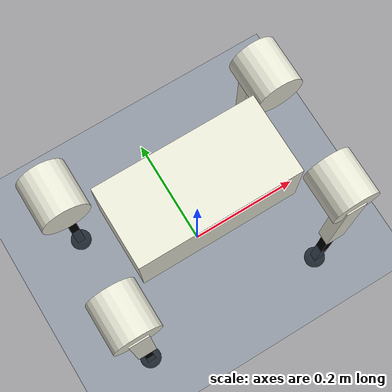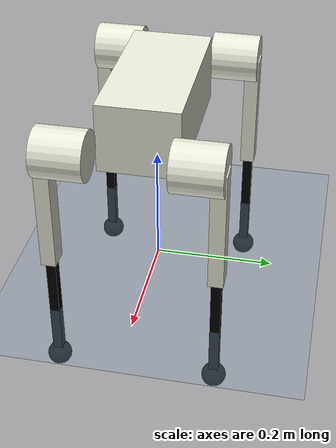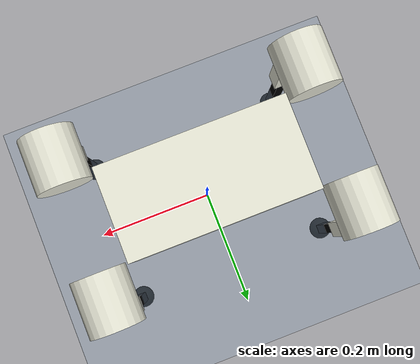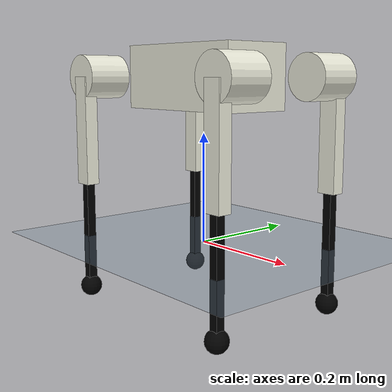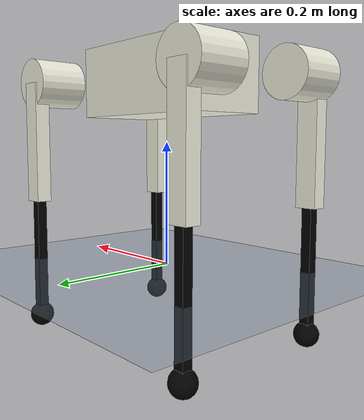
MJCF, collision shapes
<mujoco model="a1_description">
    <compiler angle="radian" meshdir="../meshes/" />
    <size njmax="500" nconmax="100" />
    <option gravity='0 0 -9.81' iterations='50' solver='Newton' timestep='0.002'/>

    <default>
        <geom contype="1" conaffinity="1" friction="0.6 0.3 0.3" rgba="0.5 0.6 0.7 1" margin="0.001" group="0"/>

        <light castshadow="false" diffuse="1 1 1"/>
        <motor ctrlrange="-33.5 33.5" ctrllimited="true"/>
        <camera fovy="60"/>
        <joint damping="0.01" armature="0.01" frictionloss="0.2" />

    </default>

    <asset>
        <mesh name="trunk" file="trunk.stl" />
        <mesh name="hip" file="hip.stl" />
        <mesh name="thigh_mirror" file="thigh_mirror.stl" />
        <mesh name="calf" file="calf.stl" />
        <mesh name="thigh" file="thigh.stl" />
    </asset>

    <asset>
        <texture name="plane" type="2d" builtin="flat" rgb1="1 1 1" rgb2="1 1 1" width="512" height="512" mark="cross" markrgb="0 0 0"/>
        <material name="plane" reflectance="0.0" texture="plane" texrepeat="3 3" texuniform="true"/>
        <texture name="grid" type="2d" builtin="checker" width="512" height="512" rgb1=".1 .2 .3" rgb2=".2 .3 .4"/>
        <material name="grid" texture="grid" texrepeat="2 2" texuniform="false" reflectance=".2"/>
    </asset>

    <visual>
        <headlight diffuse="0.6 0.6 0.6" ambient="0.3 0.3 0.3" specular="0 0 0"/>
        <rgba com="0.502 1.0 0 0.5" contactforce="0.98 0.4 0.4 0.7" contactpoint="1.0 1.0 0.6 0.4"/>
        <scale com="0.2" forcewidth="0.035" contactwidth="0.10" contactheight="0.04"/>
    </visual>

    <worldbody>
        <light pos="0 0 1.5" dir="0 0 -1" directional="true"/>
        <camera name="track" mode="trackcom" pos="0 -1.3 1.6" xyaxes="1 0 0 0 0.707 0.707"/>
        <geom name="floor" type="plane" size="0 0 1" material="grid"/>

        <body name="trunk" pos="0 0 0.3">
            <inertial pos="0.0127283 0.00218554 0.000514891" quat="0.00186575 0.711506 0.000389649 0.702677" mass="4.714" diaginertia="0.0648213 0.0565803 0.0169323" />
            <joint type="free" />
            <geom type="mesh" contype="0" conaffinity="0" group="1" rgba="0.913725 0.913725 0.847059 1" mesh="trunk" />
            <geom size="0.1335 0.066 0.057" type="box" rgba="0.913725 0.913725 0.847059 0" />
            <geom size="0.0005 0.0005 0.0005" type="box" contype="0" conaffinity="0" group="1" rgba="0.8 0 0 0" />
            <geom size="0.0005 0.0005 0.0005" type="box" rgba="0.8 0 0 0" />
            <site name="imu" pos="0 0 0"/>

            <body name="FR_hip" pos="0.183 -0.047 0">
                <inertial pos="-0.003311 -0.000635 3.1e-05" quat="0.507528 0.506268 0.491507 0.494499" mass="0.696" diaginertia="0.000807752 0.00055293 0.000468983" />
                <joint name="FR_hip_joint" pos="0 0 0" axis="1 0 0" limited="true" range="-0.802851 0.802851" />
                <geom quat="0 1 0 0" type="mesh" contype="0" conaffinity="0" group="1" rgba="0.913725 0.913725 0.847059 1" mesh="hip" />
                <geom size="0.04 0.04" pos="0 -0.055 0" quat="0.707107 0.707107 0 0" type="cylinder" rgba="0.913725 0.913725 0.847059 0" />
                <body name="FR_thigh" pos="0 -0.08505 0">
                    <inertial pos="-0.003237 0.022327 -0.027326" quat="0.999125 -0.00256393 -0.0409531 -0.00806091" mass="1.013" diaginertia="0.00555739 0.00513936 0.00133944" />
                    <joint name="FR_thigh_joint" pos="0 0 0" axis="0 1 0" limited="true" range="-1.0472 4.18879" />
                    <geom type="mesh" contype="0" conaffinity="0" group="1" rgba="0.913725 0.913725 0.847059 1" mesh="thigh_mirror" />
                    <geom size="0.1 0.01225 0.017" pos="0 0 -0.1" quat="0.707107 0 0.707107 0" type="box" rgba="0.913725 0.913725 0.847059 0" />
                    <body name="FR_calf" pos="0 0 -0.2">
                        <inertial pos="0.00472659 0 -0.131975" quat="0.706886 0.017653 0.017653 0.706886" mass="0.226" diaginertia="0.00340344 0.00339393 3.54834e-05" />
                        <joint name="FR_calf_joint" pos="0 0 0" axis="0 1 0" limited="true" range="-2.69653 -0.916298" />
                        <geom type="mesh" contype="0" conaffinity="0" group="1" rgba="0 0 0 1" mesh="calf" />
                        <geom size="0.1 0.008 0.008" pos="0 0 -0.1" quat="0.707107 0 0.707107 0" type="box" rgba="0 0 0 0" />
                        <geom name="FR_foot" size="0.02" pos="0 0 -0.2" rgba="0 0 0 1" friction="0.7 0.02 0.01"/>
                        <site name="FR_foot_site" pos="0 0 -0.2" type="sphere" size="0.02"/>
                    </body>
                </body>
            </body>
            <body name="FL_hip" pos="0.183 0.047 0">
                <inertial pos="-0.003311 0.000635 3.1e-05" quat="0.494499 0.491507 0.506268 0.507528" mass="0.696" diaginertia="0.000807752 0.00055293 0.000468983" />
                <joint name="FL_hip_joint" pos="0 0 0" axis="1 0 0" limited="true" range="-0.802851 0.802851" />
                <geom type="mesh" contype="0" conaffinity="0" group="1" rgba="0.913725 0.913725 0.847059 1" mesh="hip" />
                <geom size="0.04 0.04" pos="0 0.055 0" quat="0.707107 0.707107 0 0" type="cylinder" rgba="0.913725 0.913725 0.847059 0" />
                <body name="FL_thigh" pos="0 0.08505 0">
                    <inertial pos="-0.003237 -0.022327 -0.027326" quat="0.999125 0.00256393 -0.0409531 0.00806091" mass="1.013" diaginertia="0.00555739 0.00513936 0.00133944" />
                    <joint name="FL_thigh_joint" pos="0 0 0" axis="0 1 0" limited="true" range="-1.0472 4.18879" />
                    <geom type="mesh" contype="0" conaffinity="0" group="1" rgba="0.913725 0.913725 0.847059 1" mesh="thigh" />
                    <geom size="0.1 0.01225 0.017" pos="0 0 -0.1" quat="0.707107 0 0.707107 0" type="box" rgba="0.913725 0.913725 0.847059 0" />
                    <body name="FL_calf" pos="0 0 -0.2">
                        <inertial pos="0.00472659 0 -0.131975" quat="0.706886 0.017653 0.017653 0.706886" mass="0.226" diaginertia="0.00340344 0.00339393 3.54834e-05" />
                        <joint name="FL_calf_joint" pos="0 0 0" axis="0 1 0" limited="true" range="-2.69653 -0.916298" />
                        <geom type="mesh" contype="0" conaffinity="0" group="1" rgba="0 0 0 1" mesh="calf" />
                        <geom size="0.1 0.008 0.008" pos="0 0 -0.1" quat="0.707107 0 0.707107 0" type="box" rgba="0 0 0 0" />
                        <geom name="FL_foot" size="0.02" pos="0 0 -0.2" rgba="0 0 0 1" friction="0.7 0.02 0.01"/>
                        <site name="FL_foot_site" pos="0 0 -0.2" type="sphere" size="0.02"/>
                    </body>
                </body>
            </body>
            <body name="RR_hip" pos="-0.183 -0.047 0">
                <inertial pos="0.003311 -0.000635 3.1e-05" quat="0.491507 0.494499 0.507528 0.506268" mass="0.696" diaginertia="0.000807752 0.00055293 0.000468983" />
                <joint name="RR_hip_joint" pos="0 0 0" axis="1 0 0" limited="true" range="-0.802851 0.802851" />
                <geom quat="0 0 0 -1" type="mesh" contype="0" conaffinity="0" group="1" rgba="0.913725 0.913725 0.847059 1" mesh="hip" />
                <geom size="0.04 0.04" pos="0 -0.055 0" quat="0.707107 0.707107 0 0" type="cylinder" rgba="0.913725 0.913725 0.847059 0" />
                <body name="RR_thigh" pos="0 -0.08505 0">
                    <inertial pos="-0.003237 0.022327 -0.027326" quat="0.999125 -0.00256393 -0.0409531 -0.00806091" mass="1.013" diaginertia="0.00555739 0.00513936 0.00133944" />
                    <joint name="RR_thigh_joint" pos="0 0 0" axis="0 1 0" limited="true" range="-1.0472 4.18879" />
                    <geom type="mesh" contype="0" conaffinity="0" group="1" rgba="0.913725 0.913725 0.847059 1" mesh="thigh_mirror" />
                    <geom size="0.1 0.01225 0.017" pos="0 0 -0.1" quat="0.707107 0 0.707107 0" type="box" rgba="0.913725 0.913725 0.847059 0" />
                    <body name="RR_calf" pos="0 0 -0.2">
                        <inertial pos="0.00472659 0 -0.131975" quat="0.706886 0.017653 0.017653 0.706886" mass="0.226" diaginertia="0.00340344 0.00339393 3.54834e-05" />
                        <joint name="RR_calf_joint" pos="0 0 0" axis="0 1 0" limited="true" range="-2.69653 -0.916298" />
                        <geom type="mesh" contype="0" conaffinity="0" group="1" rgba="0 0 0 1" mesh="calf" />
                        <geom size="0.1 0.008 0.008" pos="0 0 -0.1" quat="0.707107 0 0.707107 0" type="box" rgba="0 0 0 0" />
                        <geom name="RR_foot" size="0.02" pos="0 0 -0.2" rgba="0 0 0 1" friction="0.7 0.02 0.01"/>
                        <site name="RR_foot_site" pos="0 0 -0.2" type="sphere" size="0.02"/>
                    </body>
                </body>
            </body>
            <body name="RL_hip" pos="-0.183 0.047 0">
                <inertial pos="0.003311 0.000635 3.1e-05" quat="0.506268 0.507528 0.494499 0.491507" mass="0.696" diaginertia="0.000807752 0.00055293 0.000468983" />
                <joint name="RL_hip_joint" pos="0 0 0" axis="1 0 0" limited="true" range="-0.802851 0.802851" />
                <geom quat="0 0 1 0" type="mesh" contype="0" conaffinity="0" group="1" rgba="0.913725 0.913725 0.847059 1" mesh="hip" />
                <geom size="0.04 0.04" pos="0 0.055 0" quat="0.707107 0.707107 0 0" type="cylinder" rgba="0.913725 0.913725 0.847059 0" />
                <body name="RL_thigh" pos="0 0.08505 0">
                    <inertial pos="-0.003237 -0.022327 -0.027326" quat="0.999125 0.00256393 -0.0409531 0.00806091" mass="1.013" diaginertia="0.00555739 0.00513936 0.00133944" />
                    <joint name="RL_thigh_joint" pos="0 0 0" axis="0 1 0" limited="true" range="-1.0472 4.18879" />
                    <geom type="mesh" contype="0" conaffinity="0" group="1" rgba="0.913725 0.913725 0.847059 1" mesh="thigh" />
                    <geom size="0.1 0.01225 0.017" pos="0 0 -0.1" quat="0.707107 0 0.707107 0" type="box" rgba="0.913725 0.913725 0.847059 0" />
                    <body name="RL_calf" pos="0 0 -0.2">
                        <inertial pos="0.00472659 0 -0.131975" quat="0.706886 0.017653 0.017653 0.706886" mass="0.226" diaginertia="0.00340344 0.00339393 3.54834e-05" />
                        <joint name="RL_calf_joint" pos="0 0 0" axis="0 1 0" limited="true" range="-2.69653 -0.916298" />
                        <geom type="mesh" contype="0" conaffinity="0" group="1" rgba="0 0 0 1" mesh="calf" />
                        <geom size="0.1 0.008 0.008" pos="0 0 -0.1" quat="0.707107 0 0.707107 0" type="box" rgba="0 0 0 0" />
                        <geom name="RL_foot" size="0.02" pos="0 0 -0.2" rgba="0 0 0 1" friction="0.7 0.02 0.01"/>
                        <site name="RL_foot_site" pos="0 0 -0.2" type="sphere" size="0.02"/>
                    </body>
                </body>
            </body>
        </body>
    </worldbody>
    <actuator>

        <motor name="FR_hip"       gear="1" joint="FR_hip_joint"/>
        <motor name="FR_thigh"       gear="1" joint="FR_thigh_joint"/>
        <motor name="FR_calf"       gear="1" joint="FR_calf_joint"/>
        <motor name="FL_hip"     gear="1" joint="FL_hip_joint"/>
        <motor name="FL_thigh"     gear="1" joint="FL_thigh_joint"/>
        <motor name="FL_calf"     gear="1" joint="FL_calf_joint"/>
        <motor name="RR_hip"      gear="1" joint="RR_hip_joint"/>
        <motor name="RR_thigh"   gear="1" joint="RR_thigh_joint"/>
        <motor name="RR_calf"   gear="1" joint="RR_calf_joint" />
        <motor name="RL_hip"      gear="1" joint="RL_hip_joint"/>
        <motor name="RL_thigh"      gear="1" joint="RL_thigh_joint"/>
        <motor name="RL_calf"      gear="1" joint="RL_calf_joint"/>
    </actuator>

    <sensor>

        <jointpos name="FR_hip_pos"     joint="FR_hip_joint"/>
        <jointpos name="FR_thigh_pos"   joint="FR_thigh_joint"/>
        <jointpos name="FR_calf_pos"    joint="FR_calf_joint"/>
        <jointpos name="FL_hip_pos"     joint="FL_hip_joint"/>
        <jointpos name="FL_thigh_pos"   joint="FL_thigh_joint"/>
        <jointpos name="FL_calf_pos"    joint="FL_calf_joint"/>
        <jointpos name="RR_hip_pos"     joint="RR_hip_joint"/>
        <jointpos name="RR_thigh_pos"   joint="RR_thigh_joint"/>
        <jointpos name="RR_calf_pos"    joint="RR_calf_joint" />
        <jointpos name="RL_hip_pos"     joint="RL_hip_joint"/>
        <jointpos name="RL_thigh_pos"   joint="RL_thigh_joint"/>
        <jointpos name="RL_calf_pos"    joint="RL_calf_joint"/>

        <jointvel name="FR_hip_vel"     joint="FR_hip_joint"/>
        <jointvel name="FR_thigh_vel"   joint="FR_thigh_joint"/>
        <jointvel name="FR_calf_vel"    joint="FR_calf_joint"/>
        <jointvel name="FL_hip_vel"     joint="FL_hip_joint"/>
        <jointvel name="FL_thigh_vel"   joint="FL_thigh_joint"/>
        <jointvel name="FL_calf_vel"    joint="FL_calf_joint"/>
        <jointvel name="RR_hip_vel"     joint="RR_hip_joint"/>
        <jointvel name="RR_thigh_vel"   joint="RR_thigh_joint"/>
        <jointvel name="RR_calf_vel"    joint="RR_calf_joint" />
        <jointvel name="RL_hip_vel"     joint="RL_hip_joint"/>
        <jointvel name="RL_thigh_vel"   joint="RL_thigh_joint"/>
        <jointvel name="RL_calf_vel"    joint="RL_calf_joint"/>

        <accelerometer name="BodyAcc" site="imu"/>
        <gyro name="BodyGyro" site="imu"/>
        <frameangacc name="BodyAngAcc" objtype="site" objname="imu"/>

        <framepos name="BodyPos" objtype="site" objname="imu"/>
        <framequat name="BodyQuat" objtype="site" objname="imu"/>

        <framelinvel name="BodyVel" objtype="site" objname="imu" />

        <touch name="FR_foot_force_sensor" site="FR_foot_site"/>
        <touch name="FL_foot_force_sensor" site="FL_foot_site"/>
        <touch name="RR_foot_force_sensor" site="RR_foot_site"/>
        <touch name="RL_foot_force_sensor" site="RL_foot_site"/>

    </sensor>

</mujoco>
